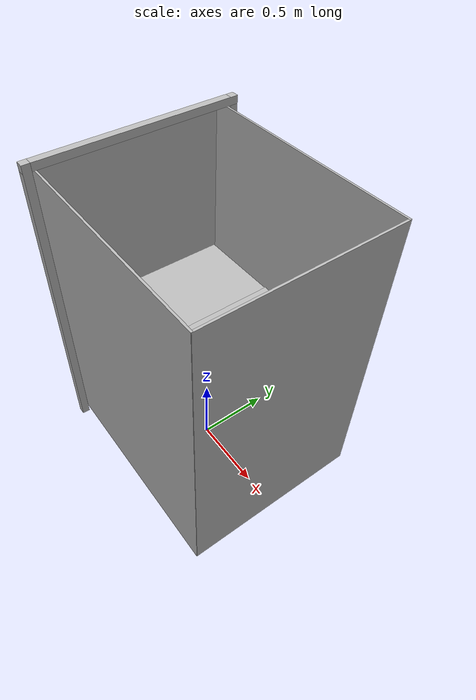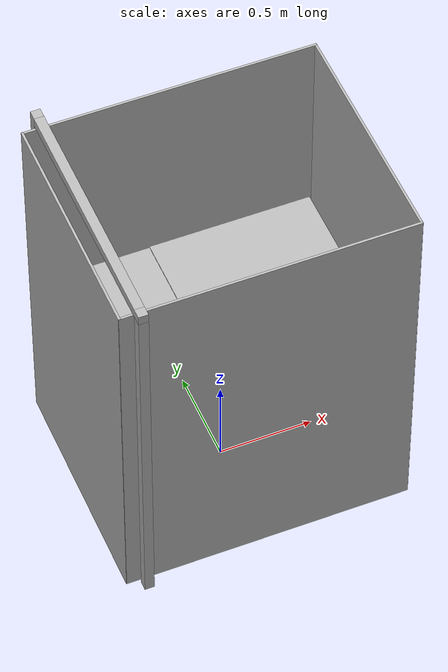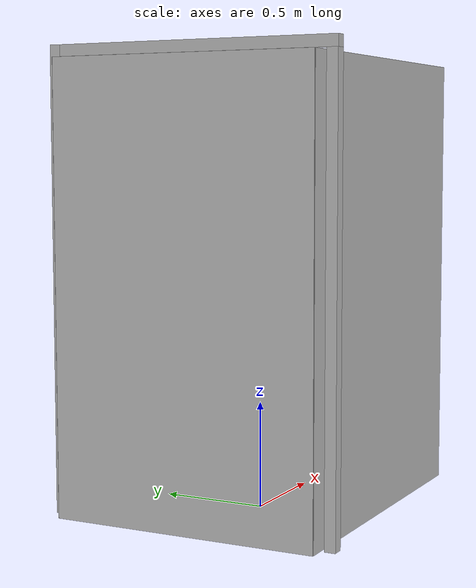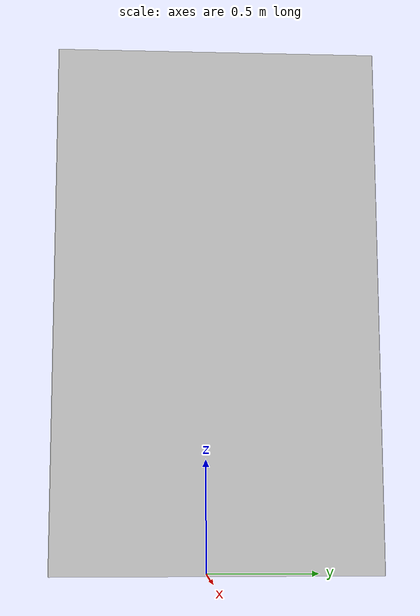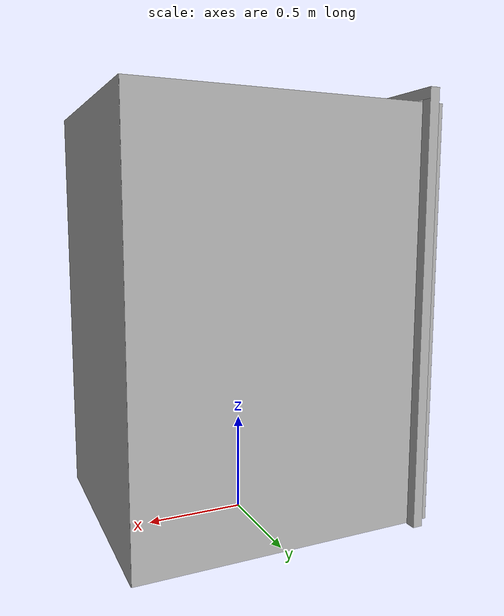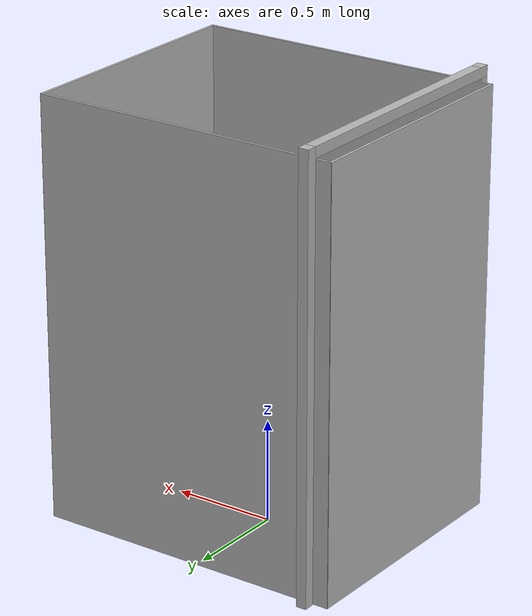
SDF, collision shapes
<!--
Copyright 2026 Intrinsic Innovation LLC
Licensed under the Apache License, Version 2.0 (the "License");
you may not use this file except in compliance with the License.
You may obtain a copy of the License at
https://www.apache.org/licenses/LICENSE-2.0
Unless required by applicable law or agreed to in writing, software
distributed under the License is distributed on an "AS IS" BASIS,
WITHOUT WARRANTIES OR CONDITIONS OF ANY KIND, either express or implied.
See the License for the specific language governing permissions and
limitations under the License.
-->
<?xml version="1.0" encoding="UTF-8"?>

<sdf version="1.6">
  <model name='enclosure'>
    <link name ="enclosure_link">
      <visual name ="enclosure">
        <geometry>
          <mesh>
            <uri>model://intrinsic/models/assets/imts/cell_enclosure/cell_enclosure.glb</uri>
          </mesh>
        </geometry>
      </visual>
      <collision name ="collider_box.001">
        <pose>0.00381 -0.00381 0.53669 1.5708 0.0 3.14159</pose>
        <geometry>
          <box>
            <size>1.44954 0.96797 1.17554</size>
          </box>
        </geometry>
      </collision>
      <collision name ="collider_box.002">
        <pose>-0.66263 0.65659 1.09728 1.5708 0.0 3.14159</pose>
        <geometry>
          <box>
            <size>0.0508 2.08915 0.0508</size>
          </box>
        </geometry>
      </collision>
      <collision name ="collider_box.003">
        <pose>-0.66263 -0.00381 2.11645 1.5708 0.0 3.14159</pose>
        <geometry>
          <box>
            <size>0.0508 0.0508 1.3716</size>
          </box>
        </geometry>
      </collision>
      <collision name ="collider_box.004">
        <pose>0.29495 0.25399 1.02447 -0.0 -0.0 0.0</pose>
        <geometry>
          <box>
            <size>0.86343 0.65955 0.00635</size>
          </box>
        </geometry>
      </collision>
      <collision name ="collider_box.005">
        <pose>-0.66263 -0.66421 1.09728 1.5708 0.0 3.14159</pose>
        <geometry>
          <box>
            <size>0.0508 2.08915 0.0508</size>
          </box>
        </geometry>
      </collision>
      <collision name ="collider_box">
        <pose>-0.75375 0.0 1.06871 1.5708 -0.0 3.14159</pose>
        <geometry>
          <box>
            <size>0.0127 2.032 1.24206</size>
          </box>
        </geometry>
      </collision>
      <collision name ="collider_box.006">
        <pose>-0.0 0.61675 1.0687 1.5708 -0.0 3.14159</pose>
        <geometry>
          <box>
            <size>1.51613 2.032 0.0127</size>
          </box>
        </geometry>
      </collision>
      <collision name ="collider_box.007">
        <pose>0.75375 0.0 1.0687 1.5708 -0.0 3.14159</pose>
        <geometry>
          <box>
            <size>0.0127 2.032 1.24206</size>
          </box>
        </geometry>
      </collision>
      <collision name ="collider_box.008">
        <pose>0.0 -0.61675 1.06871 1.5708 -0.0 3.14159</pose>
        <geometry>
          <box>
            <size>1.51613 2.032 0.0127</size>
          </box>
        </geometry>
      </collision>
    </link>
  </model>
</sdf>
